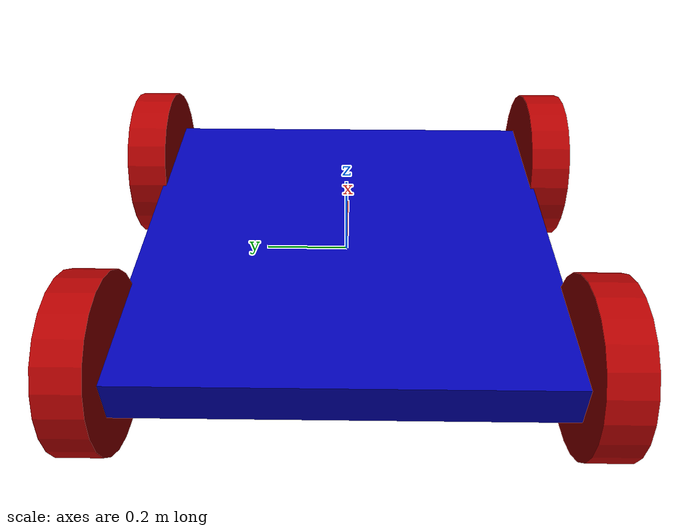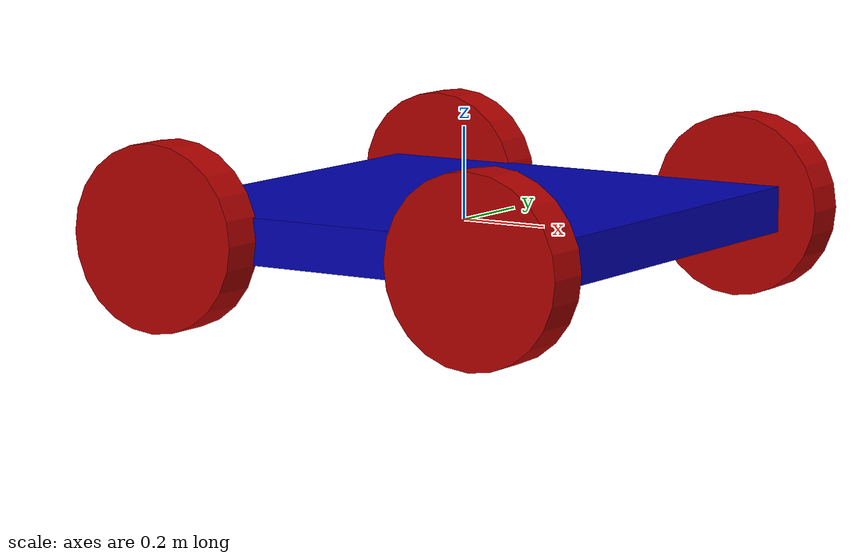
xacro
<?xml version="1.0"?>
<robot xmlns:xacro="http://www.ros.org/wiki/xacro" name="robot">

    <link name="base_footprint">
    </link>
    <link name="base_link">
        <visual>
            <geometry>
                <box size="1.0 1.0 .1" />
            </geometry>
            <material name="blue">
                <color rgba="0.0 0.0 0.7 1.0"/>
            </material>
        </visual>
        <collision>
            <geometry>
                <box size="1.0 1.0 .1" />
            </geometry>
        </collision>
        <inertial>
            <mass value="1.0"/>
            <origin xyz="0.0 0.0 0.0" rpy="0.0 0.0 0.0"/>
            <inertia ixx="0.084166" ixy="0.0" ixz="0.0" iyy="0.084166" iyz="0.0" izz="0.16666"/>
        </inertial>
    </link>

    <joint name="base_link_joint" type="fixed">
        <origin xyz="0.0 0.0 0.0" rpy="0.0 0.0 0.0"/>
        <parent link="base_footprint"/>
        <child link="base_link"/>
        <axis xyz="0.0 0.0 0.0"/>
    </joint>
    <xacro:macro name="wheel" params="name x y z">
        <link name="${name}">
            <visual>
                <geometry>
                    <cylinder radius=".2" length="0.1"/>
                </geometry>
                <material name="red">
                    <color rgba="0.7 0.0 0.0 1.0"/>
                </material>
            </visual>
            <collision>
                <geometry>
                    <cylinder radius=".2" length=".1"/>
                </geometry>
            </collision>
            <inertial>
                <mass value="0.5"/>
                <origin xyz="0.0 0.0 0.0" rpy="0.0 0.0 0.0"/>
                <inertia ixx="0.0054158" ixy="0.0" ixz="0.0" iyy="0.0054158" iyz="0.0" izz="0.01"/>
            </inertial>
        </link>
        <joint name="wheel_${name}_joint" type="continuous">
            <parent link="base_link"/>
            <child link="${name}"/>
            <axis xyz="0 0 1"/>
            <origin xyz="${x} ${y} ${z}" rpy="1.57 0 0"/>
        </joint>
    </xacro:macro>

    <xacro:include filename="$(find lab3_sub_pub)/description/robot_controller.xacro"/>

    <xacro:wheel name="front_right" x="0.389898" y="-0.541621" z="0.000419"/>
    <xacro:wheel name="front_left" x="0.389898" y="0.541621" z="-0.000419"/>
    <xacro:wheel name="back_right" x="-0.389898" y="-0.541621" z="0.000419"/>
    <xacro:wheel name="back_left" x="-0.389898" y="0.541621" z="-0.000419"/>

</robot>
